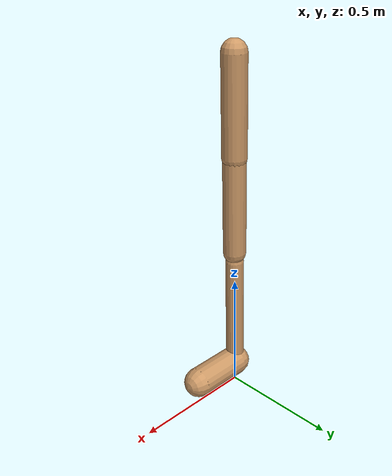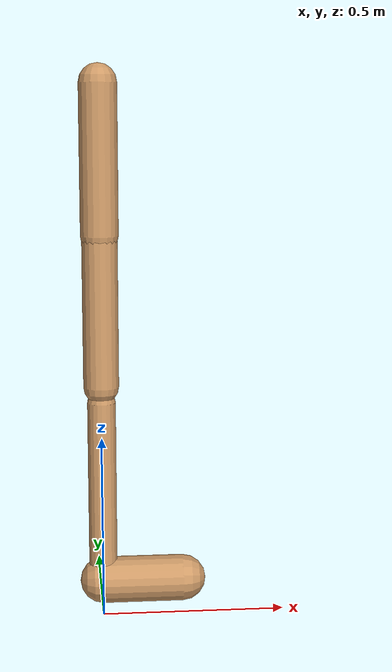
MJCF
<mujoco model="walker2d">
  <compiler angle="degree" coordinate="global" inertiafromgeom="true" />
  <default>
    <joint armature="0.01" damping=".1" limited="true" />
    <geom conaffinity="0" condim="3" contype="1" density="1000" friction="0.8 .1 .1" rgba="0.8 0.6 .4 1" />
  </default>
  <option integrator="RK4" timestep="0.002" />
  <worldbody>

    <body name="torso" pos="0 0 -0.09093587363728535">
      <joint armature="0" axis="1 0 0" damping="0" limited="false" name="ignorex" pos="0 0 0" stiffness="0" type="slide" />
      <joint armature="0" axis="0 0 1" damping="0" limited="false" name="ignorez" pos="0 0 0" ref="1.25" stiffness="0" type="slide" />
      <joint armature="0" axis="0 1 0" damping="0" limited="false" name="ignorey" pos="0 0 0" stiffness="0" type="hinge" />
      <geom fromto="0 0 1.45 0 0 1.05" name="torso_geom" size="0.050710598687176825" type="capsule" />
      <body name="thigh">
        <joint axis="0 -1 0" name="thigh_joint" pos="0 0 1.05" range="-150 0" type="hinge" />
        <geom fromto="0.0 0.0 1.05 0.0 0.0 0.6430748875123983" name="thigh_geom" size="0.04769354509346818" type="capsule" />
        <body name="leg" pos="0.0 0.0 0.0430748875123983">
          <joint axis="0 -1 0" name="leg_joint" pos="0 0 0.6" range="-150 0" type="hinge" />
          <geom fromto="0.0 0.0 0.6 0.0 0.0 0.14786098612488702" name="leg_geom" size="0.03815483607477454" type="capsule" />
          <body name="foot" pos="0.0 0.0 0.04786098612488701">
            <joint axis="0 -1 0" name="foot_joint" pos="0 0 0.1" range="-45 45" type="hinge" />
            <geom fromto="-0.0 0.0 0.1 0.21861756551071113 0.0 0.1" name="foot_geom" size="0.06308430441744482" type="capsule" />
          </body>
        </body>
      </body>

      <body name="thigh_left">
        <joint axis="0 -1 0" name="thigh_left_joint" pos="0 0 1.05" range="-150 0" type="hinge" />
        <geom fromto="0.0 0.0 1.05 0.0 0.0 0.6430748875123983" name="thigh_left_geom" rgba=".7 .3 .6 1" size="0.04769354509346818" type="capsule" />
        <body name="leg_left" pos="0.0 0.0 0.0430748875123983">
          <joint axis="0 -1 0" name="leg_left_joint" pos="0 0 0.6" range="-150 0" type="hinge" />
          <geom fromto="0.0 0.0 0.6 0.0 0.0 0.14786098612488702" name="leg_left_geom" rgba=".7 .3 .6 1" size="0.03815483607477454" type="capsule" />
          <body name="foot_left" pos="0.0 0.0 0.04786098612488701">
            <joint axis="0 -1 0" name="foot_left_joint" pos="0 0 0.1" range="-45 45" type="hinge" />
            <geom fromto="-0.0 0.0 0.1 0.21861756551071113 0.0 0.1" name="foot_left_geom" rgba=".7 .3 .6 1" size="0.06308430441744482" type="capsule" />
          </body>
        </body>
      </body>
    </body>
  </worldbody>
  <actuator>

    <motor ctrllimited="true" ctrlrange="-1.0 1.0" gear="100" joint="thigh_joint" />
    <motor ctrllimited="true" ctrlrange="-1.0 1.0" gear="100" joint="leg_joint" />
    <motor ctrllimited="true" ctrlrange="-1.0 1.0" gear="100" joint="foot_joint" />
    <motor ctrllimited="true" ctrlrange="-1.0 1.0" gear="100" joint="thigh_left_joint" />
    <motor ctrllimited="true" ctrlrange="-1.0 1.0" gear="100" joint="leg_left_joint" />
    <motor ctrllimited="true" ctrlrange="-1.0 1.0" gear="100" joint="foot_left_joint" />

  </actuator>
</mujoco>
